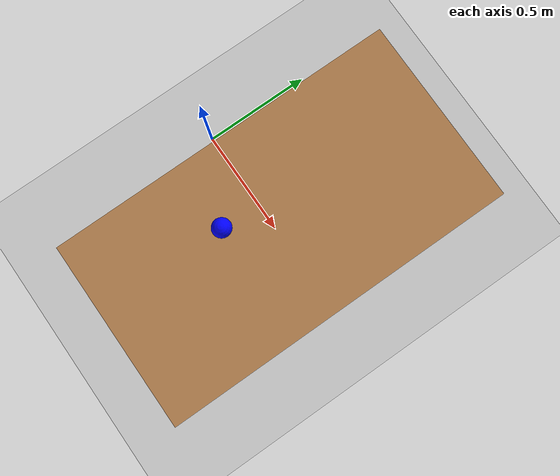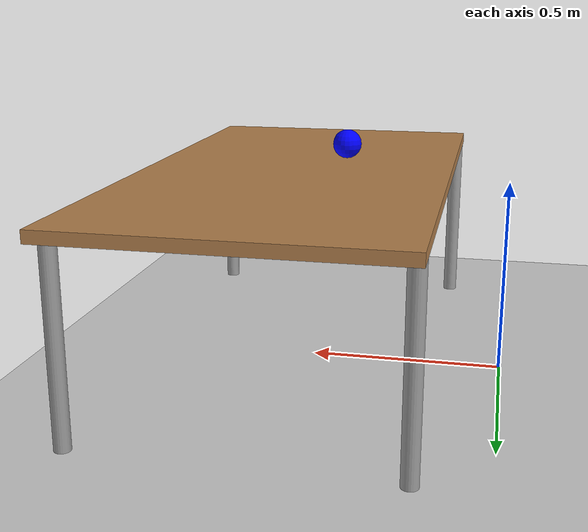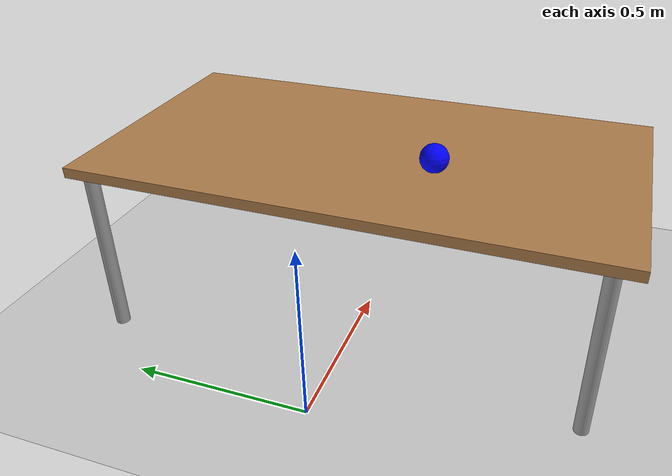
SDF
<sdf version="1.6">
 <world name="default">
  <light name="sun" type="directional">
   <pose>0 0 10 0 -0 0</pose>
   <diffuse>0.8 0.8 0.8 1</diffuse>
   <specular>0.1 0.1 0.1 1</specular>
   <attenuation>
    <range>1000</range>
    <constant>0.9</constant>
    <linear>0.01</linear>
    <quadratic>0.001</quadratic>
   </attenuation>
   <direction>-0.5 0.5 -1</direction>
  </light>
  <model name="ground_plane">
   <static>1</static>
   <link name="link">
    <collision name="collision">
     <geometry><plane><normal>0 0 1</normal><size>100 100</size></plane></geometry>
     <surface><friction><ode><mu>100</mu><mu2>50</mu2></ode></friction></surface>
    </collision>
    <visual name="visual">
     <cast_shadows>0</cast_shadows>
     <geometry><plane><normal>0 0 1</normal><size>100 100</size></plane></geometry>
     <material>
      <script><uri>file://media/materials/scripts/gazebo.material</uri><name>Gazebo/Grey</name></script>
     </material>
    </visual>
   </link>
  </model>
  <gravity>0 0 -9.8</gravity>
  <magnetic_field>6e-06 2.3e-05 -4.2e-05</magnetic_field>
  <atmosphere type="adiabatic"/>
  <physics name="default_physics" default="0" type="ode">
   <max_step_size>0.001</max_step_size>
   <real_time_factor>1</real_time_factor>
   <real_time_update_rate>1000</real_time_update_rate>
  </physics>
  <scene><ambient>0.4 0.4 0.4 1</ambient><background>0.7 0.7 0.7 1</background><shadows>1</shadows></scene>
  <spherical_coordinates>
   <surface_model>EARTH_WGS84</surface_model>
   <latitude_deg>0</latitude_deg>
   <longitude_deg>0</longitude_deg>
   <elevation>0</elevation>
   <heading_deg>0</heading_deg>
  </spherical_coordinates>
  <model name="table"><include><uri>model://small_table</uri><pose>0.55 0 0 0 0 1.57123</pose></include></model>
  <model name="unit_sphere">
   <include><uri>model://blue_ball</uri><pose>0.45 -0.2 0.515 0 0 0</pose></include>
  </model>
 </world>
</sdf>

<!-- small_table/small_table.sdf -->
<sdf version="1.5">
  <model name="small_table">
    <static>true</static>
    <link name="link">
      <collision name="surface">
        <pose>0 0 0.5 0 0 0</pose>
        <geometry>
          <box>
            <size>1.5 0.8 0.03</size>
          </box>
        </geometry>
        <surface>
          <friction>
            <ode>
              <mu>0.6</mu>
              <mu2>0.6</mu2>
            </ode>
          </friction>
        </surface>
      </collision>
      <visual name="visual1">
        <pose>0 0 0.5 0 0 0</pose>
        <geometry>
          <box>
            <size>1.5 0.8 0.03</size>
          </box>
        </geometry>
        <material>
          <script>
            <uri>file://media/materials/scripts/gazebo.material</uri>
            <name>Gazebo/Wood</name>
          </script>
        </material>
      </visual>
      <collision name="front_left_leg">
        <pose>0.68 0.38 0.25 0 0 0</pose>
        <geometry>
          <cylinder>
            <radius>0.02</radius>
            <length>0.5</length>
          </cylinder>
        </geometry>
      </collision>
      <visual name="front_left_leg">
        <pose>0.68 0.38 0.25 0 0 0</pose>
        <geometry>
          <cylinder>
            <radius>0.02</radius>
            <length>0.5</length>
          </cylinder>
        </geometry>
        <material>
          <script>
            <uri>file://media/materials/scripts/gazebo.material</uri>
            <name>Gazebo/Grey</name>
          </script>
        </material>
      </visual>
      <collision name="front_right_leg">
        <pose>0.68 -0.38 0.25 0 0 0</pose>
        <geometry>
          <cylinder>
            <radius>0.02</radius>
            <length>0.5</length>
          </cylinder>
        </geometry>
      </collision>
      <visual name="front_right_leg">
        <pose>0.68 -0.38 0.25 0 0 0</pose>
        <geometry>
          <cylinder>
            <radius>0.02</radius>
            <length>0.5</length>
          </cylinder>
        </geometry>
        <material>
          <script>
            <uri>file://media/materials/scripts/gazebo.material</uri>
            <name>Gazebo/Grey</name>
          </script>
        </material>
      </visual>
      <collision name="back_right_leg">
        <pose>-0.68 -0.38 0.25 0 0 0</pose>
        <geometry>
          <cylinder>
            <radius>0.02</radius>
            <length>0.5</length>
          </cylinder>
        </geometry>
      </collision>
      <visual name="back_right_leg">
        <pose>-0.68 -0.38 0.25 0 0 0</pose>
        <geometry>
          <cylinder>
            <radius>0.02</radius>
            <length>0.5</length>
          </cylinder>
        </geometry>
        <material>
          <script>
            <uri>file://media/materials/scripts/gazebo.material</uri>
            <name>Gazebo/Grey</name>
          </script>
        </material>
      </visual>
      <collision name="back_left_leg">
        <pose>-0.68 0.38 0.25 0 0 0</pose>
        <geometry>
          <cylinder>
            <radius>0.02</radius>
            <length>0.5</length>
          </cylinder>
        </geometry>
      </collision>
      <visual name="back_left_leg">
        <pose>-0.68 0.38 0.25 0 0 0</pose>
        <geometry>
          <cylinder>
            <radius>0.02</radius>
            <length>0.5</length>
          </cylinder>
        </geometry>
        <material>
          <script>
            <uri>file://media/materials/scripts/gazebo.material</uri>
            <name>Gazebo/Grey</name>
          </script>
        </material>
      </visual>
    </link>
  </model>
</sdf>

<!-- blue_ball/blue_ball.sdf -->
<sdf version='1.6'>
  <model name='blue_ball'>
    <link name='link'>
      <pose frame=''>0 0 0.04 0 0 0</pose>
      <inertial>
        <mass>0.01</mass>
        <inertia>
          <ixx>0.001</ixx>
          <ixy>0</ixy>
          <ixz>0</ixz>
          <iyy>0.001</iyy>
          <iyz>0</iyz>
          <izz>0.001</izz>
        </inertia>
      </inertial>
      <self_collide>0</self_collide>
      <kinematic>0</kinematic>
      <visual name='visual'>
        <geometry>
          <sphere>
            <radius>0.04</radius>
          </sphere>
        </geometry>
        <material>
          <script>
            <name>Gazebo/Grey</name>
            <uri>file://media/materials/scripts/gazebo.material</uri>
          </script>
          <ambient>0.0 0.0 1 1</ambient>
          <diffuse>0.0 0.0 1 1</diffuse>
          <specular>0.0 0.0 0.01 1</specular>
          <emissive>0 0 0 1</emissive>
        </material>
        <pose frame=''>0 0 0 0 0 0</pose>
        <transparency>0</transparency>
        <cast_shadows>1</cast_shadows>
      </visual>
      <collision name='collision'>
        <laser_retro>0</laser_retro>
        <max_contacts>10</max_contacts>
        <pose frame=''>0 0 0 0 0 0</pose>
        <geometry>
          <sphere>
            <radius>0.04</radius>
          </sphere>
        </geometry>
        <surface>
          <friction>
            <ode>
              <mu>1</mu>
              <mu2>1</mu2>
              <fdir1>0 0 0</fdir1>
              <slip1>0</slip1>
              <slip2>0</slip2>
            </ode>
            <torsional>
              <coefficient>1</coefficient>
              <patch_radius>0</patch_radius>
              <surface_radius>0</surface_radius>
              <use_patch_radius>1</use_patch_radius>
              <ode>
                <slip>0</slip>
              </ode>
            </torsional>
          </friction>
          <bounce>
            <restitution_coefficient>0.8</restitution_coefficient>
            <threshold>1</threshold>
          </bounce>
          <contact>
            <collide_without_contact>0</collide_without_contact>
            <collide_without_contact_bitmask>1</collide_without_contact_bitmask>
            <collide_bitmask>1</collide_bitmask>
            <ode>
              <soft_cfm>0</soft_cfm>
              <soft_erp>0.2</soft_erp>
              <kp>1e+13</kp>
              <kd>1</kd>
              <max_vel>0.01</max_vel>
              <min_depth>0</min_depth>
            </ode>
            <bullet>
              <split_impulse>1</split_impulse>
              <split_impulse_penetration_threshold>-0.01</split_impulse_penetration_threshold>
              <soft_cfm>0</soft_cfm>
              <soft_erp>0.2</soft_erp>
              <kp>1e+13</kp>
              <kd>1</kd>
            </bullet>
          </contact>
        </surface>
      </collision>
    </link>
    <static>0</static>
    <allow_auto_disable>1</allow_auto_disable>
  </model>
</sdf>
